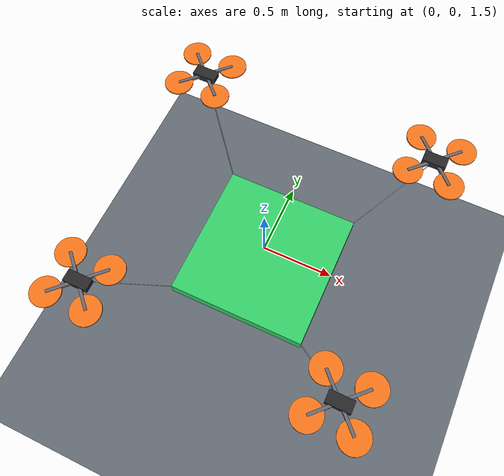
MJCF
<?xml version="1.0" ?>
<mujoco model="Quadcopter">
   <include file="scene.xml"/>
   <compiler angle="degree" coordinate="local" inertiafromgeom="true"/>
   <worldbody>
      <body name="quad0" pos="0.8535533905932737 0.8535533905932736 2.0" quat="1 0 0 0">
         <geom name="quad0_geom" type="box" pos="0.0 0.0 0.0" quat="1 0 0 0" size="0.08 0.04 0.025" mass="0.75" density="1000" rgba="0.15 0.15 0.15 1"/>
         <joint name="quad0_root_joint" type="free"/>
         <geom name="quad0_rotor_arm_geom_0" type="box" pos="0.0 0.0 0.0" quat="0.92388 0 0 0.382683" size="0.2 0.01 0.01" mass="0.01" density="1000" rgba="0.4 0.4 0.45 1"/>
         <geom name="quad0_rotor_prop_geom_0" type="cylinder" size="0.1 0.005" pos="0.1414213562373095 0.14142135623730953 0.0" mass="0.05" density="1000" rgba="0.95 0.45 0.1 1"/>
         <geom name="quad0_rotor_arm_geom_1" type="box" pos="0.0 0.0 0.0" quat="0.382683 0 0 0.92388" size="0.2 0.01 0.01" mass="0.01" density="1000" rgba="0.4 0.4 0.45 1"/>
         <geom name="quad0_rotor_prop_geom_1" type="cylinder" size="0.1 0.005" pos="-0.1414213562373095 0.14142135623730953 0.0" mass="0.05" density="1000" rgba="0.95 0.45 0.1 1"/>
         <geom name="quad0_rotor_arm_geom_2" type="box" pos="0.0 0.0 0.0" quat="-0.382683 0 0 0.92388" size="0.2 0.01 0.01" mass="0.01" density="1000" rgba="0.4 0.4 0.45 1"/>
         <geom name="quad0_rotor_prop_geom_2" type="cylinder" size="0.1 0.005" pos="-0.1414213562373095 -0.1414213562373095 0.0" mass="0.05" density="1000" rgba="0.95 0.45 0.1 1"/>
         <geom name="quad0_rotor_arm_geom_3" type="box" pos="0.0 0.0 0.0" quat="-0.92388 0 0 0.382683" size="0.2 0.01 0.01" mass="0.01" density="1000" rgba="0.4 0.4 0.45 1"/>
         <geom name="quad0_rotor_prop_geom_3" type="cylinder" size="0.1 0.005" pos="0.14142135623730948 -0.14142135623730956 0.0" mass="0.05" density="1000" rgba="0.95 0.45 0.1 1"/>
         <site name="quad0_end1" type="sphere" pos="0.0 0.0 0.0" quat="1 0 0 0" size="0.01" rgba="0 0 0 0"/>
         <site name="quad0_thrust" type="box" pos="0.0 0.0 0.0" quat="1 0 0 0" size="0.035 0.035 0.035" rgba="0 0 0 0"/>
         <site name="quad0_Mx" type="box" pos="0.0 0.0 0.0" quat="1 0 0 0" size="0.06 0.035 0.025" rgba="0 0 0 0"/>
         <site name="quad0_My" type="box" pos="0.0 0.0 0.0" quat="1 0 0 0" size="0.06 0.035 0.025" rgba="0 0 0 0"/>
         <site name="quad0_Mz" type="box" pos="0.0 0.0 0.0" quat="1 0 0 0" size="0.06 0.035 0.025" rgba="0 0 0 0"/>
      </body>
      <body name="quad1" pos="-0.8535533905932736 0.8535533905932737 2.0" quat="1 0 0 0">
         <geom name="quad1_geom" type="box" pos="0.0 0.0 0.0" quat="1 0 0 0" size="0.08 0.04 0.025" mass="0.75" density="1000" rgba="0.15 0.15 0.15 1"/>
         <joint name="quad1_root_joint" type="free"/>
         <geom name="quad1_rotor_arm_geom_0" type="box" pos="0.0 0.0 0.0" quat="0.92388 0 0 0.382683" size="0.2 0.01 0.01" mass="0.01" density="1000" rgba="0.4 0.4 0.45 1"/>
         <geom name="quad1_rotor_prop_geom_0" type="cylinder" size="0.1 0.005" pos="0.1414213562373095 0.14142135623730953 0.0" mass="0.05" density="1000" rgba="0.95 0.45 0.1 1"/>
         <geom name="quad1_rotor_arm_geom_1" type="box" pos="0.0 0.0 0.0" quat="0.382683 0 0 0.92388" size="0.2 0.01 0.01" mass="0.01" density="1000" rgba="0.4 0.4 0.45 1"/>
         <geom name="quad1_rotor_prop_geom_1" type="cylinder" size="0.1 0.005" pos="-0.1414213562373095 0.14142135623730953 0.0" mass="0.05" density="1000" rgba="0.95 0.45 0.1 1"/>
         <geom name="quad1_rotor_arm_geom_2" type="box" pos="0.0 0.0 0.0" quat="-0.382683 0 0 0.92388" size="0.2 0.01 0.01" mass="0.01" density="1000" rgba="0.4 0.4 0.45 1"/>
         <geom name="quad1_rotor_prop_geom_2" type="cylinder" size="0.1 0.005" pos="-0.1414213562373095 -0.1414213562373095 0.0" mass="0.05" density="1000" rgba="0.95 0.45 0.1 1"/>
         <geom name="quad1_rotor_arm_geom_3" type="box" pos="0.0 0.0 0.0" quat="-0.92388 0 0 0.382683" size="0.2 0.01 0.01" mass="0.01" density="1000" rgba="0.4 0.4 0.45 1"/>
         <geom name="quad1_rotor_prop_geom_3" type="cylinder" size="0.1 0.005" pos="0.14142135623730948 -0.14142135623730956 0.0" mass="0.05" density="1000" rgba="0.95 0.45 0.1 1"/>
         <site name="quad1_end1" type="sphere" pos="0.0 0.0 0.0" quat="1 0 0 0" size="0.01" rgba="0 0 0 0"/>
         <site name="quad1_thrust" type="box" pos="0.0 0.0 0.0" quat="1 0 0 0" size="0.035 0.035 0.035" rgba="0 0 0 0"/>
         <site name="quad1_Mx" type="box" pos="0.0 0.0 0.0" quat="1 0 0 0" size="0.06 0.035 0.025" rgba="0 0 0 0"/>
         <site name="quad1_My" type="box" pos="0.0 0.0 0.0" quat="1 0 0 0" size="0.06 0.035 0.025" rgba="0 0 0 0"/>
         <site name="quad1_Mz" type="box" pos="0.0 0.0 0.0" quat="1 0 0 0" size="0.06 0.035 0.025" rgba="0 0 0 0"/>
      </body>
      <body name="quad2" pos="-0.853553390593274 -0.8535533905932736 2.0" quat="1 0 0 0">
         <geom name="quad2_geom" type="box" pos="0.0 0.0 0.0" quat="1 0 0 0" size="0.08 0.04 0.025" mass="0.75" density="1000" rgba="0.15 0.15 0.15 1"/>
         <joint name="quad2_root_joint" type="free"/>
         <geom name="quad2_rotor_arm_geom_0" type="box" pos="0.0 0.0 0.0" quat="0.92388 0 0 0.382683" size="0.2 0.01 0.01" mass="0.01" density="1000" rgba="0.4 0.4 0.45 1"/>
         <geom name="quad2_rotor_prop_geom_0" type="cylinder" size="0.1 0.005" pos="0.1414213562373095 0.14142135623730953 0.0" mass="0.05" density="1000" rgba="0.95 0.45 0.1 1"/>
         <geom name="quad2_rotor_arm_geom_1" type="box" pos="0.0 0.0 0.0" quat="0.382683 0 0 0.92388" size="0.2 0.01 0.01" mass="0.01" density="1000" rgba="0.4 0.4 0.45 1"/>
         <geom name="quad2_rotor_prop_geom_1" type="cylinder" size="0.1 0.005" pos="-0.1414213562373095 0.14142135623730953 0.0" mass="0.05" density="1000" rgba="0.95 0.45 0.1 1"/>
         <geom name="quad2_rotor_arm_geom_2" type="box" pos="0.0 0.0 0.0" quat="-0.382683 0 0 0.92388" size="0.2 0.01 0.01" mass="0.01" density="1000" rgba="0.4 0.4 0.45 1"/>
         <geom name="quad2_rotor_prop_geom_2" type="cylinder" size="0.1 0.005" pos="-0.1414213562373095 -0.1414213562373095 0.0" mass="0.05" density="1000" rgba="0.95 0.45 0.1 1"/>
         <geom name="quad2_rotor_arm_geom_3" type="box" pos="0.0 0.0 0.0" quat="-0.92388 0 0 0.382683" size="0.2 0.01 0.01" mass="0.01" density="1000" rgba="0.4 0.4 0.45 1"/>
         <geom name="quad2_rotor_prop_geom_3" type="cylinder" size="0.1 0.005" pos="0.14142135623730948 -0.14142135623730956 0.0" mass="0.05" density="1000" rgba="0.95 0.45 0.1 1"/>
         <site name="quad2_end1" type="sphere" pos="0.0 0.0 0.0" quat="1 0 0 0" size="0.01" rgba="0 0 0 0"/>
         <site name="quad2_thrust" type="box" pos="0.0 0.0 0.0" quat="1 0 0 0" size="0.035 0.035 0.035" rgba="0 0 0 0"/>
         <site name="quad2_Mx" type="box" pos="0.0 0.0 0.0" quat="1 0 0 0" size="0.06 0.035 0.025" rgba="0 0 0 0"/>
         <site name="quad2_My" type="box" pos="0.0 0.0 0.0" quat="1 0 0 0" size="0.06 0.035 0.025" rgba="0 0 0 0"/>
         <site name="quad2_Mz" type="box" pos="0.0 0.0 0.0" quat="1 0 0 0" size="0.06 0.035 0.025" rgba="0 0 0 0"/>
      </body>
      <body name="quad3" pos="0.8535533905932735 -0.853553390593274 2.0" quat="1 0 0 0">
         <geom name="quad3_geom" type="box" pos="0.0 0.0 0.0" quat="1 0 0 0" size="0.08 0.04 0.025" mass="0.75" density="1000" rgba="0.15 0.15 0.15 1"/>
         <joint name="quad3_root_joint" type="free"/>
         <geom name="quad3_rotor_arm_geom_0" type="box" pos="0.0 0.0 0.0" quat="0.92388 0 0 0.382683" size="0.2 0.01 0.01" mass="0.01" density="1000" rgba="0.4 0.4 0.45 1"/>
         <geom name="quad3_rotor_prop_geom_0" type="cylinder" size="0.1 0.005" pos="0.1414213562373095 0.14142135623730953 0.0" mass="0.05" density="1000" rgba="0.95 0.45 0.1 1"/>
         <geom name="quad3_rotor_arm_geom_1" type="box" pos="0.0 0.0 0.0" quat="0.382683 0 0 0.92388" size="0.2 0.01 0.01" mass="0.01" density="1000" rgba="0.4 0.4 0.45 1"/>
         <geom name="quad3_rotor_prop_geom_1" type="cylinder" size="0.1 0.005" pos="-0.1414213562373095 0.14142135623730953 0.0" mass="0.05" density="1000" rgba="0.95 0.45 0.1 1"/>
         <geom name="quad3_rotor_arm_geom_2" type="box" pos="0.0 0.0 0.0" quat="-0.382683 0 0 0.92388" size="0.2 0.01 0.01" mass="0.01" density="1000" rgba="0.4 0.4 0.45 1"/>
         <geom name="quad3_rotor_prop_geom_2" type="cylinder" size="0.1 0.005" pos="-0.1414213562373095 -0.1414213562373095 0.0" mass="0.05" density="1000" rgba="0.95 0.45 0.1 1"/>
         <geom name="quad3_rotor_arm_geom_3" type="box" pos="0.0 0.0 0.0" quat="-0.92388 0 0 0.382683" size="0.2 0.01 0.01" mass="0.01" density="1000" rgba="0.4 0.4 0.45 1"/>
         <geom name="quad3_rotor_prop_geom_3" type="cylinder" size="0.1 0.005" pos="0.14142135623730948 -0.14142135623730956 0.0" mass="0.05" density="1000" rgba="0.95 0.45 0.1 1"/>
         <site name="quad3_end1" type="sphere" pos="0.0 0.0 0.0" quat="1 0 0 0" size="0.01" rgba="0 0 0 0"/>
         <site name="quad3_thrust" type="box" pos="0.0 0.0 0.0" quat="1 0 0 0" size="0.035 0.035 0.035" rgba="0 0 0 0"/>
         <site name="quad3_Mx" type="box" pos="0.0 0.0 0.0" quat="1 0 0 0" size="0.06 0.035 0.025" rgba="0 0 0 0"/>
         <site name="quad3_My" type="box" pos="0.0 0.0 0.0" quat="1 0 0 0" size="0.06 0.035 0.025" rgba="0 0 0 0"/>
         <site name="quad3_Mz" type="box" pos="0.0 0.0 0.0" quat="1 0 0 0" size="0.06 0.035 0.025" rgba="0 0 0 0"/>
      </body>
      <body name="pyld" pos="0.0 0.0 1.34" quat="1 0 0 0">
         <geom name="pyld" type="box" pos="0.0 0.0 0.0" quat="1 0 0 0" size="0.5 0.5 0.05" mass="1.0" density="1000" rgba="0.2 0.8 0.4 1"/>
         <site name="pyld_poc0" type="sphere" pos="0.5 0.4999999999999999 0.05" quat="1 0 0 0" size="0.01" rgba="0 0 0 0"/>
         <site name="pyld_poc1" type="sphere" pos="-0.4999999999999999 0.5 0.05" quat="1 0 0 0" size="0.01" rgba="0 0 0 0"/>
         <site name="pyld_poc2" type="sphere" pos="-0.5000000000000001 -0.4999999999999999 0.05" quat="1 0 0 0" size="0.01" rgba="0 0 0 0"/>
         <site name="pyld_poc3" type="sphere" pos="0.49999999999999983 -0.5000000000000001 0.05" quat="1 0 0 0" size="0.01" rgba="0 0 0 0"/>
         <joint name="pyld_joint" type="free"/>
      </body>
   </worldbody>
   <actuator>
      <motor ctrllimited="true" site="quad0_thrust" ctrlrange="0.0 30.0" gear="0.0 0.0 1.0 0.0 0.0 0.0"/>
      <motor ctrllimited="true" site="quad0_Mx" ctrlrange="-3.0 3.0" gear="0.0 0.0 0.0 1.0 0.0 0.0"/>
      <motor ctrllimited="true" site="quad0_My" ctrlrange="-3.0 3.0" gear="0.0 0.0 0.0 0.0 1.0 0.0"/>
      <motor ctrllimited="true" site="quad0_Mz" ctrlrange="-3.0 3.0" gear="0.0 0.0 0.0 0.0 0.0 1.0"/>
   </actuator>
   <actuator>
      <motor ctrllimited="true" site="quad1_thrust" ctrlrange="0.0 30.0" gear="0.0 0.0 1.0 0.0 0.0 0.0"/>
      <motor ctrllimited="true" site="quad1_Mx" ctrlrange="-3.0 3.0" gear="0.0 0.0 0.0 1.0 0.0 0.0"/>
      <motor ctrllimited="true" site="quad1_My" ctrlrange="-3.0 3.0" gear="0.0 0.0 0.0 0.0 1.0 0.0"/>
      <motor ctrllimited="true" site="quad1_Mz" ctrlrange="-3.0 3.0" gear="0.0 0.0 0.0 0.0 0.0 1.0"/>
   </actuator>
   <actuator>
      <motor ctrllimited="true" site="quad2_thrust" ctrlrange="0.0 30.0" gear="0.0 0.0 1.0 0.0 0.0 0.0"/>
      <motor ctrllimited="true" site="quad2_Mx" ctrlrange="-3.0 3.0" gear="0.0 0.0 0.0 1.0 0.0 0.0"/>
      <motor ctrllimited="true" site="quad2_My" ctrlrange="-3.0 3.0" gear="0.0 0.0 0.0 0.0 1.0 0.0"/>
      <motor ctrllimited="true" site="quad2_Mz" ctrlrange="-3.0 3.0" gear="0.0 0.0 0.0 0.0 0.0 1.0"/>
   </actuator>
   <actuator>
      <motor ctrllimited="true" site="quad3_thrust" ctrlrange="0.0 30.0" gear="0.0 0.0 1.0 0.0 0.0 0.0"/>
      <motor ctrllimited="true" site="quad3_Mx" ctrlrange="-3.0 3.0" gear="0.0 0.0 0.0 1.0 0.0 0.0"/>
      <motor ctrllimited="true" site="quad3_My" ctrlrange="-3.0 3.0" gear="0.0 0.0 0.0 0.0 1.0 0.0"/>
      <motor ctrllimited="true" site="quad3_Mz" ctrlrange="-3.0 3.0" gear="0.0 0.0 0.0 0.0 0.0 1.0"/>
   </actuator>
   <tendon>
      <spatial limited="true" range="0.0 1.0" springlength="1.0" width="0.003" rgba="0.9 0.9 0.9 1" damping="0.0" stiffness="0.0">
         <site site="quad0_end1"/>
         <site site="pyld_poc0"/>
      </spatial>
      <spatial limited="true" range="0.0 1.0" springlength="1.0" width="0.003" rgba="0.9 0.9 0.9 1" damping="0.0" stiffness="0.0">
         <site site="quad1_end1"/>
         <site site="pyld_poc1"/>
      </spatial>
      <spatial limited="true" range="0.0 1.0" springlength="1.0" width="0.003" rgba="0.9 0.9 0.9 1" damping="0.0" stiffness="0.0">
         <site site="quad2_end1"/>
         <site site="pyld_poc2"/>
      </spatial>
      <spatial limited="true" range="0.0 1.0" springlength="1.0" width="0.003" rgba="0.9 0.9 0.9 1" damping="0.0" stiffness="0.0">
         <site site="quad3_end1"/>
         <site site="pyld_poc3"/>
      </spatial>
   </tendon>
</mujoco>

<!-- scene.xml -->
<mujoco>
  <compiler meshdir="asset" texturedir="asset"/>

  <statistic meansize=".05"/>

  <visual>
    <rgba haze="0.85 0.9 1.0 1"/>
    <quality shadowsize="4096"/>
    <map stiffness="700" shadowscale="0.5" fogstart="10" fogend="50" zfar="60" haze="0.0"/>
    <global offwidth="1920" offheight="1080"/>
  </visual>

  <asset>
    <texture type="skybox" builtin="gradient" rgb1="0.7 0.82 0.95" rgb2="0.35 0.45 0.55" width="512" height="512"/>
    <texture name="texplane" type="2d" builtin="checker" rgb1=".42 .45 .48" rgb2=".34 .37 .4"
      width="512" height="512" mark="cross" markrgb=".65 .65 .65"/>
    <material name="matplane" reflectance="0.15" texture="texplane" texrepeat="10 10" texuniform="true"/>
  </asset>

  <worldbody>
    <light diffuse=".65 .65 .65" specular="0.18 0.18 0.18" pos="0 0 3.0" dir="0 0 -1" castshadow="false"/>
    <light directional="true" diffuse=".9 .9 .9" specular="0.28 0.28 0.28" pos="2 2 5" dir="-0.2 -0.2 -1"/>
    <geom name="ground" type="plane" size="0 0 1" pos="0 0 0" material="matplane" condim="1"/>
  </worldbody>
</mujoco>
